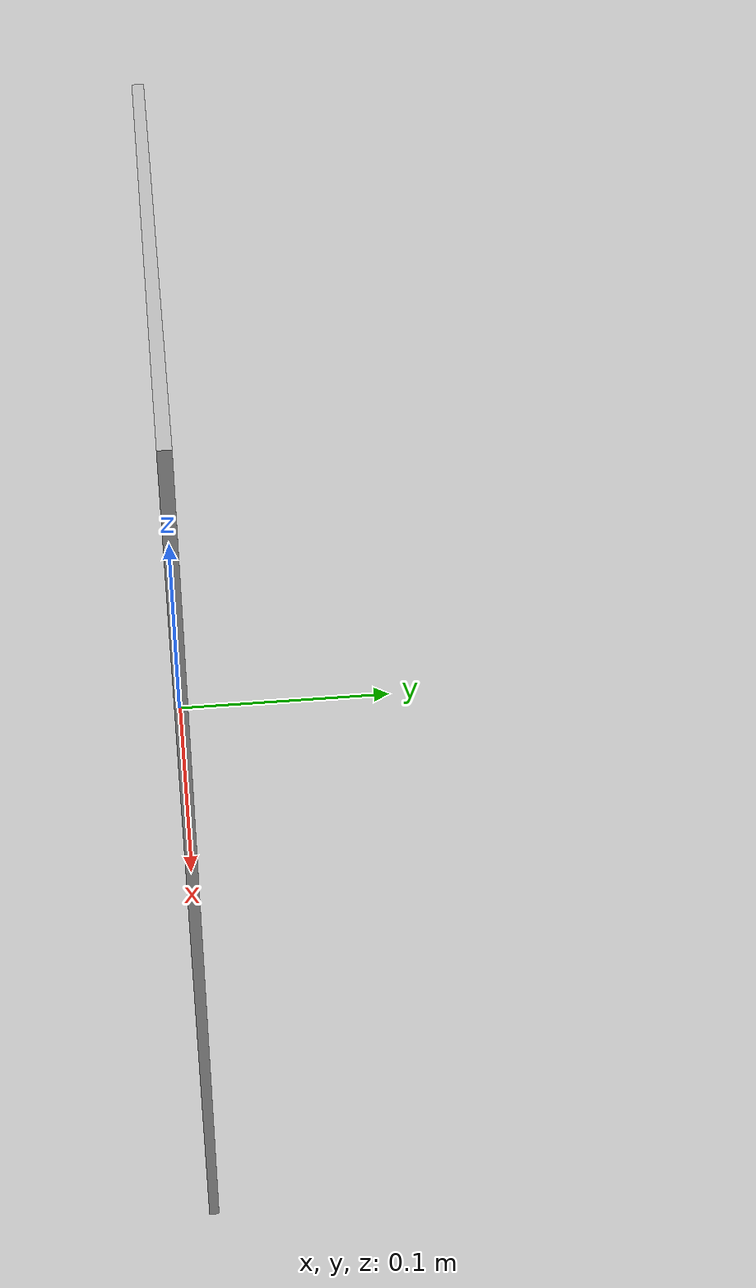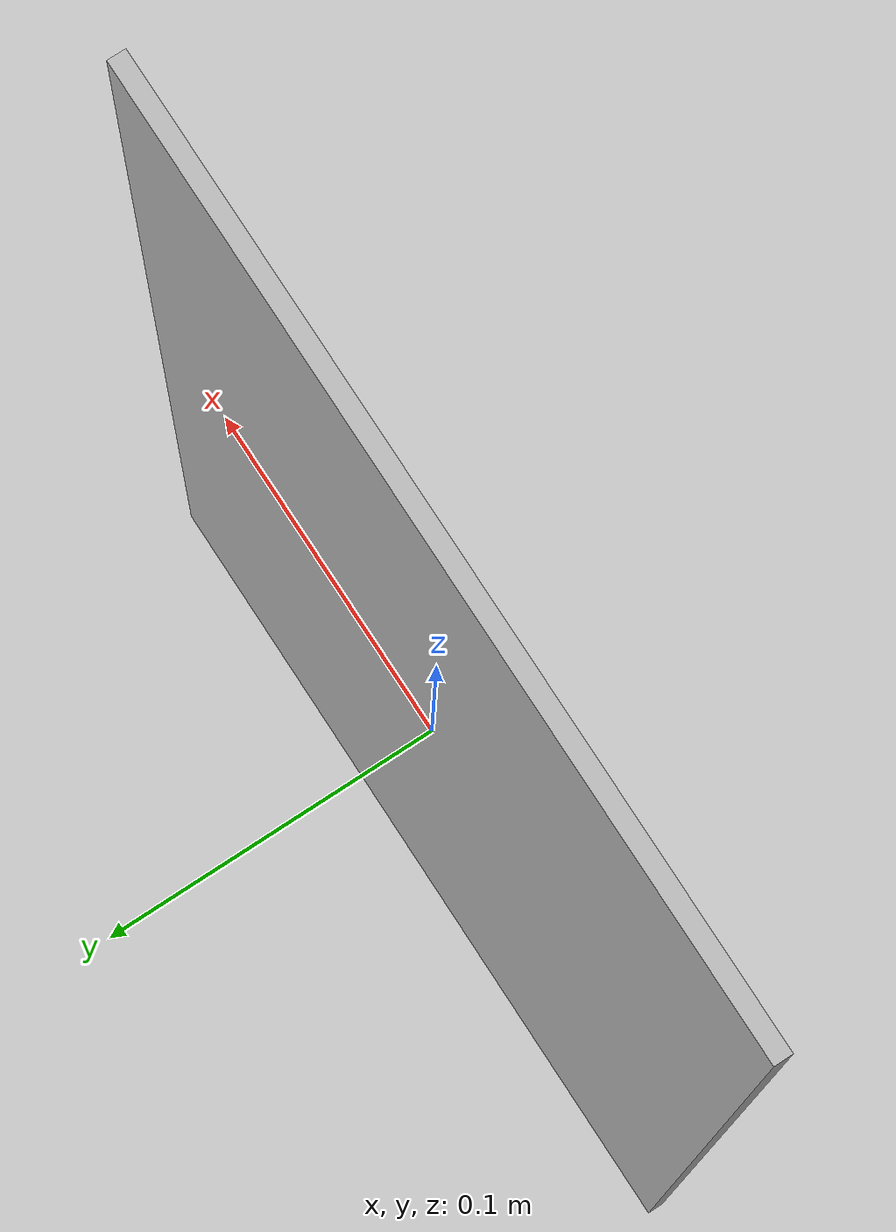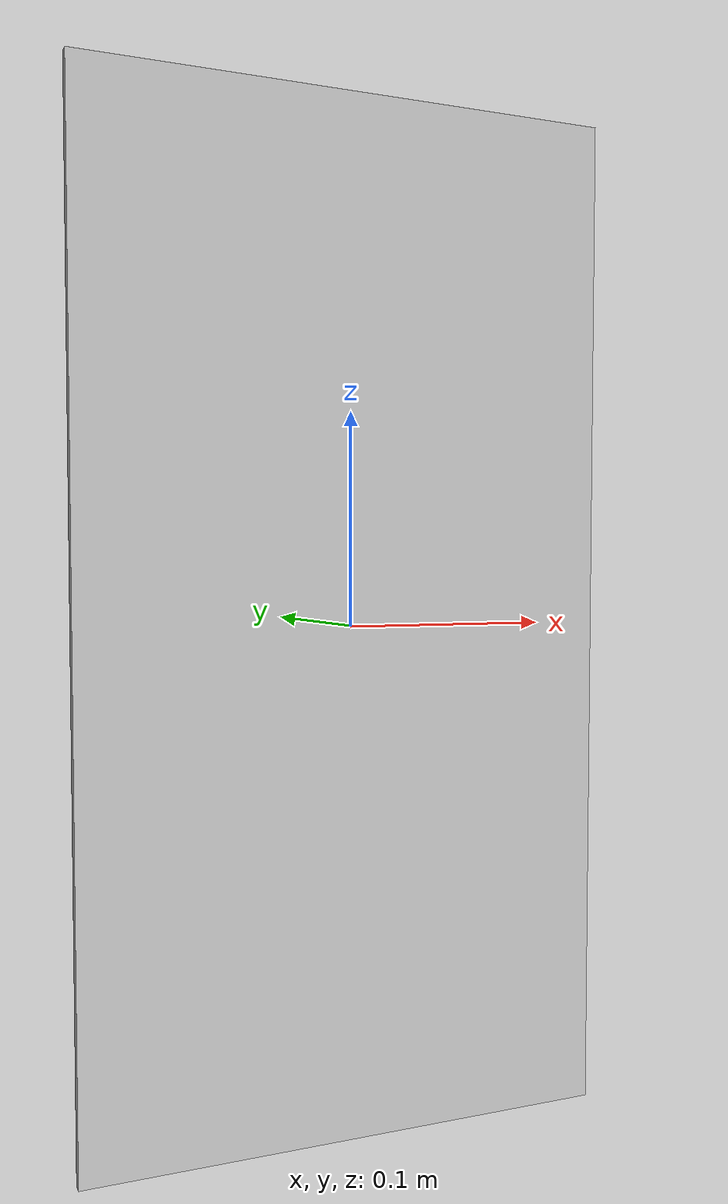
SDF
<?xml version="1.0" ?>
<sdf version="1.5">
  <model name="Cow1">
    <static>true</static>
    <link name="link">
      <pose>0 0 0 0 0 0</pose>
      <collision name="collision">
        <geometry>
          <box>
            <size>.260 0.005 .4903</size>
          </box>
        </geometry>
      </collision>
      <visual name="visual">
        <cast_shadows>false</cast_shadows>
        <geometry>
          <box>
            <size>.260 0.005 .4903</size>
          </box>
        </geometry>
        <material>
          <script>
            <uri>model://Cow1/materials/scripts</uri>
            <uri>model://Cow1/materials/textures</uri>
            <name>vrc/Cow1</name>
          </script>
        </material>
      </visual>
    </link>
  </model>
</sdf>
